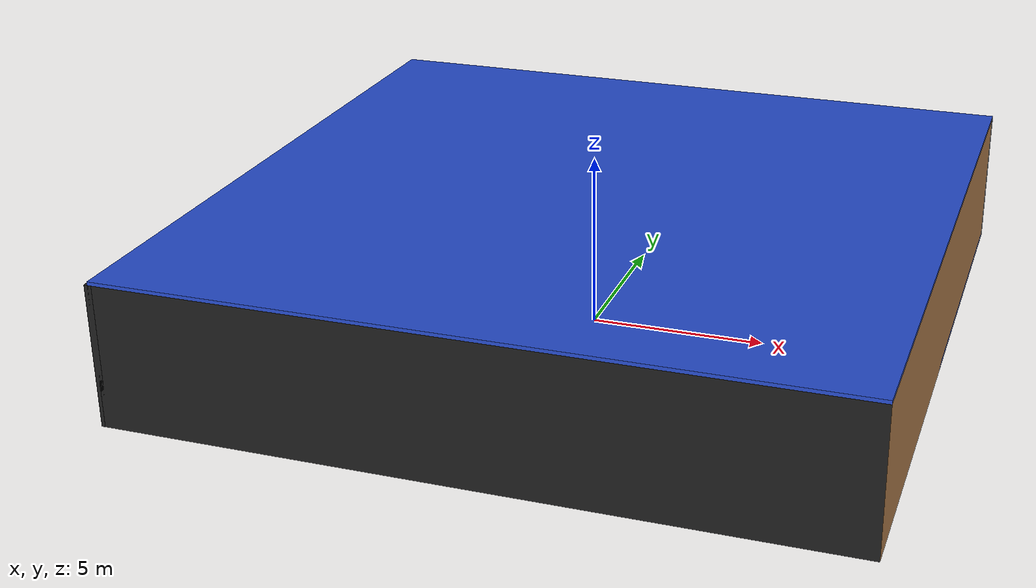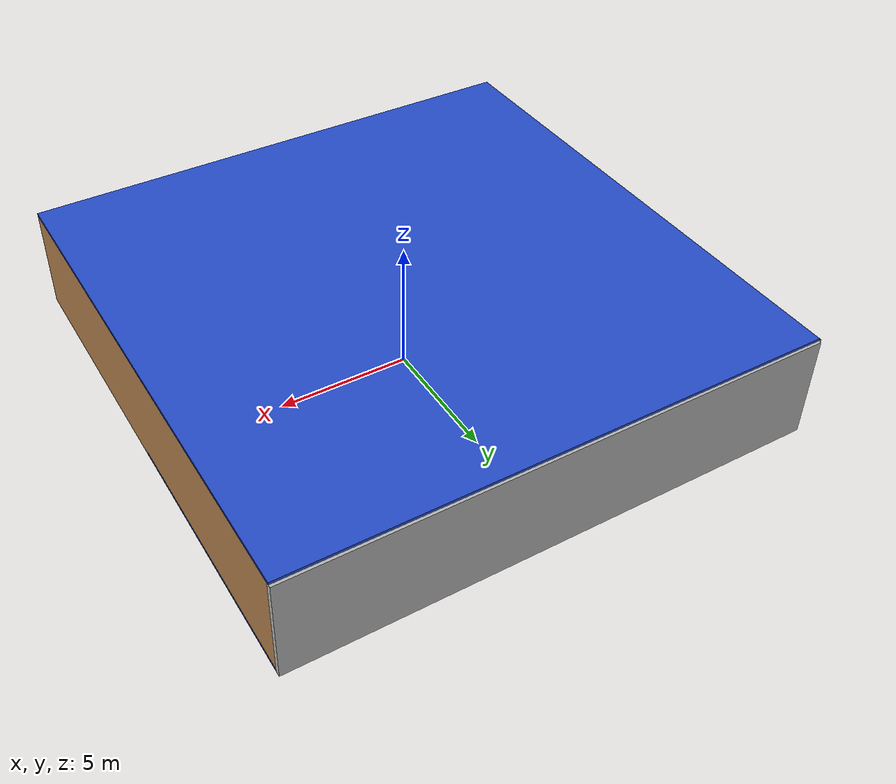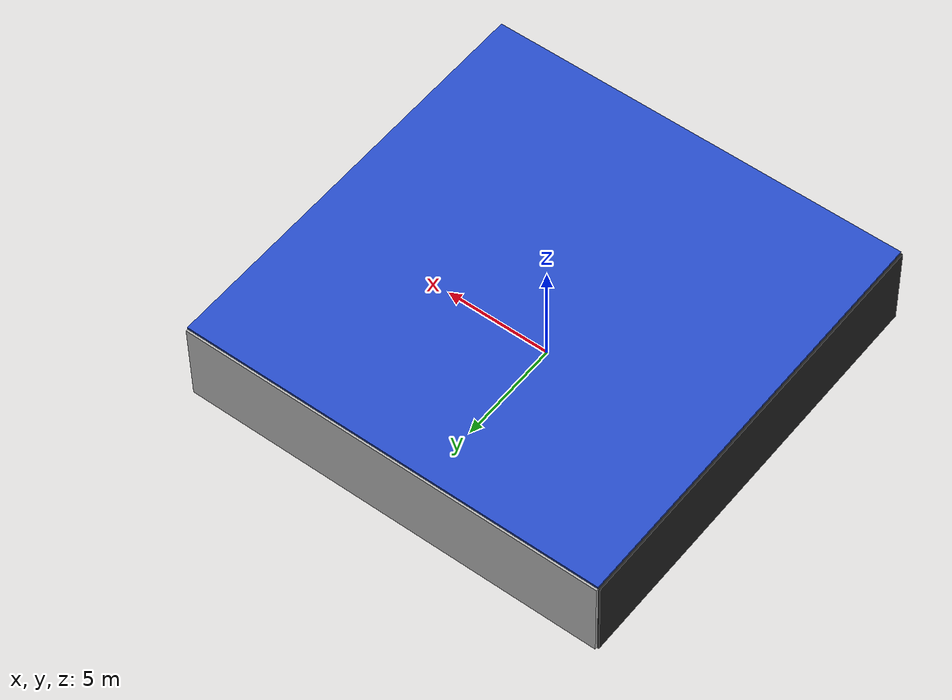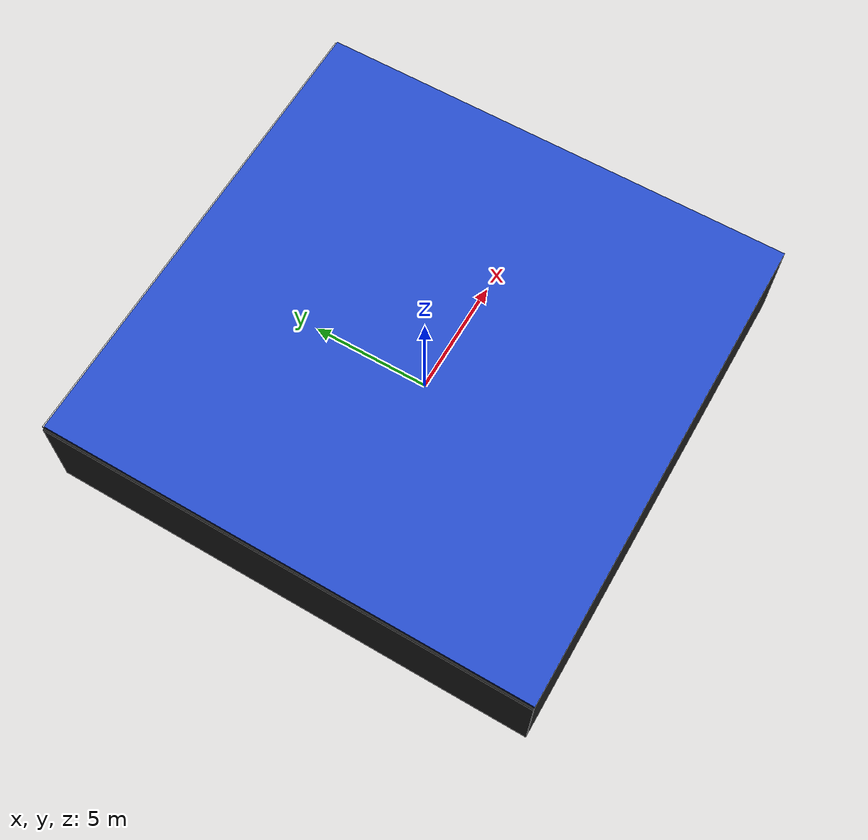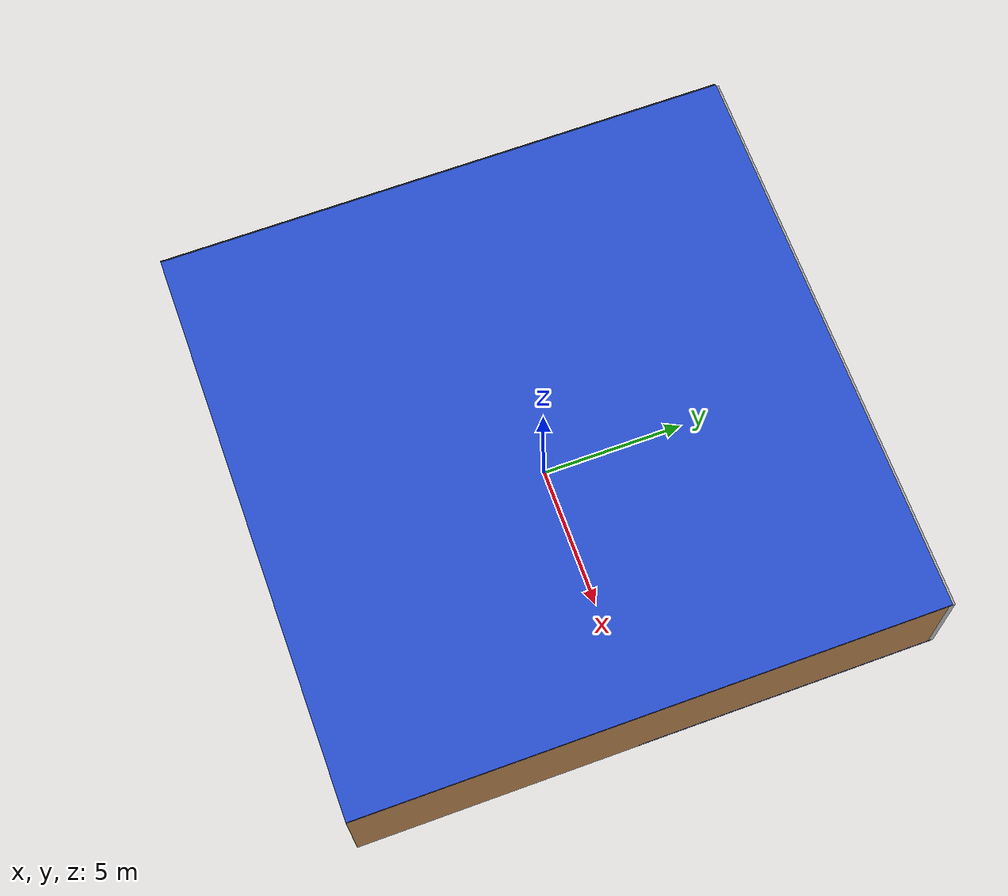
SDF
<sdf version="1.4">
 <world name="default">
  <physics type="ode">
   <max_step_size>0.001</max_step_size>
   <real_time_factor>1</real_time_factor>
   <real_time_update_rate>1000</real_time_update_rate>
   <gravity>0 0 -9.8</gravity>
  </physics>
  <scene><ambient>0.4 0.4 0.4 1</ambient><background>0.7 0.7 0.7 1</background><shadows>1</shadows></scene>
  <model name="Surrounding">
   <static>1</static>
   <link name="Ceiling">
    <collision name="Ceiling_Collision"><geometry><box><size>20 20 0.1</size></box></geometry></collision>
    <visual name="Ceiling_Visual">
     <geometry><box><size>20 20 0.1</size></box></geometry>
     <material>
      <script><uri>file://media/materials/scripts/gazebo.material</uri><name>Gazebo/BlueGlow</name></script>
     </material>
    </visual>
    <pose>0 0 4.05 0 0 0</pose>
   </link>
   <link name="Wall_South">
    <collision name="Wall_South_Collision">
     <geometry><box><size>20 0 4</size></box></geometry>
     <pose>0 0 2 0 -0 0</pose>
    </collision>
    <visual name="Wall_South_Visual">
     <pose>0 0 2 0 -0 0</pose>
     <geometry><box><size>20 0 4</size></box></geometry>
     <material>
      <script><uri>file://media/materials/scripts/gazebo.material</uri><name>Gazebo/FlatBlack</name></script>
     </material>
    </visual>
    <velocity_decay><linear>0</linear><angular>0</angular></velocity_decay>
    <pose>0 -10 0 0 -0 0</pose>
   </link>
   <link name="Wall_East">
    <collision name="Wall_21_Collision">
     <geometry><box><size>20 0 4</size></box></geometry>
     <pose>0 0 2 0 -0 0</pose>
    </collision>
    <visual name="Wall_21_Visual">
     <pose>0 0 2 0 -0 0</pose>
     <geometry><box><size>20 0 4</size></box></geometry>
     <material>
      <script><uri>file://media/materials/scripts/gazebo.material</uri><name>Gazebo/WoodPallet</name></script>
     </material>
    </visual>
    <velocity_decay><linear>0</linear><angular>0</angular></velocity_decay>
    <pose>10 0 0 0 -0 1.5708</pose>
   </link>
   <link name="Wall_North">
    <collision name="Wall_22_Collision">
     <geometry><box><size>20 0.2 4</size></box></geometry>
     <pose>0 0 2 0 -0 0</pose>
    </collision>
    <visual name="Wall_22_Visual">
     <pose>0 0 2 0 -0 0</pose>
     <geometry><box><size>20 0.2 4</size></box></geometry>
     <material>
      <script><uri>file://media/materials/scripts/gazebo.material</uri><name>Gazebo/LightOff</name></script>
     </material>
    </visual>
    <velocity_decay><linear>0</linear><angular>0</angular></velocity_decay>
    <pose>0 10 0 0 -0 0</pose>
   </link>
   <link name="Wall_West">
    <collision name="Wall_23_Collision">
     <geometry><box><size>20 0.2 4</size></box></geometry>
     <pose>0 0 2 0 -0 0</pose>
    </collision>
    <visual name="Wall_23_Visual">
     <pose>0 0 2 0 -0 0</pose>
     <geometry><box><size>20 0.2 4</size></box></geometry>
     <material>
      <script><uri>file://media/materials/scripts/gazebo.material</uri><name>Gazebo/Black</name></script>
     </material>
    </visual>
    <velocity_decay><linear>0</linear><angular>0</angular></velocity_decay>
    <pose>-10 0 0 0 0 -1.5708</pose>
   </link>
   <link name="Ground_link">
    <collision name="collision">
     <pose>0 0 .05 0 -0 0</pose>
     <geometry><box><size>20 20 0.1</size></box></geometry>
    </collision>
    <visual name="visual">
     <pose>0 0 .05 0 -0 0</pose>
     <geometry><box><size>20 20 0.1</size></box></geometry>
     <material>
      <script><uri>file://media/materials/scripts/gazebo.material</uri><name>Gazebo/BlueLaser</name></script>
     </material>
    </visual>
   </link>
   <static>1</static>
  </model>
  <spherical_coordinates>
   <surface_model>EARTH_WGS84</surface_model>
   <latitude_deg>0</latitude_deg>
   <longitude_deg>0</longitude_deg>
   <elevation>0</elevation>
   <heading_deg>0</heading_deg>
  </spherical_coordinates>
  <light name="lightball_0" type="diffuse">
   <diffuse>0.8 0.8 0.8 1</diffuse>
   <specular>0.2 0.2 0.2 1</specular>
   <attenuation>
    <range>100</range>
    <constant>0.7</constant>
    <linear>0.01</linear>
    <quadratic>0.001</quadratic>
   </attenuation>
   <direction>-0.5 0.1 -0.9</direction>
   <pose>-3.91107993085 9.07859240696 3.34807952167 0 0 0</pose>
  </light>
  <light name="lightball_1" type="diffuse">
   <diffuse>0.8 0.8 0.8 1</diffuse>
   <specular>0.2 0.2 0.2 1</specular>
   <attenuation>
    <range>100</range>
    <constant>0.7</constant>
    <linear>0.01</linear>
    <quadratic>0.001</quadratic>
   </attenuation>
   <direction>-0.5 0.1 -0.9</direction>
   <pose>-3.849443201 6.97517595522 3.29105302703 0 0 0</pose>
  </light>
  <light name="lightball_2" type="diffuse">
   <diffuse>0.8 0.8 0.8 1</diffuse>
   <specular>0.2 0.2 0.2 1</specular>
   <attenuation>
    <range>100</range>
    <constant>0.7</constant>
    <linear>0.01</linear>
    <quadratic>0.001</quadratic>
   </attenuation>
   <direction>-0.5 0.1 -0.9</direction>
   <pose>-0.0241133941305 -1.79206806703 2.44079048967 0 0 0</pose>
  </light>
  <light name="lightball_3" type="diffuse">
   <diffuse>0.8 0.8 0.8 1</diffuse>
   <specular>0.2 0.2 0.2 1</specular>
   <attenuation>
    <range>100</range>
    <constant>0.7</constant>
    <linear>0.01</linear>
    <quadratic>0.001</quadratic>
   </attenuation>
   <direction>-0.5 0.1 -0.9</direction>
   <pose>-3.52843331477 -0.170862706328 3.56261942533 0 0 0</pose>
  </light>
  <light name="lightball_4" type="diffuse">
   <diffuse>0.8 0.8 0.8 1</diffuse>
   <specular>0.2 0.2 0.2 1</specular>
   <attenuation>
    <range>100</range>
    <constant>0.7</constant>
    <linear>0.01</linear>
    <quadratic>0.001</quadratic>
   </attenuation>
   <direction>-0.5 0.1 -0.9</direction>
   <pose>2.09534313247 -2.76634793992 3.17104238345 0 0 0</pose>
  </light>
  <light name="lightball_5" type="diffuse">
   <diffuse>0.8 0.8 0.8 1</diffuse>
   <specular>0.2 0.2 0.2 1</specular>
   <attenuation>
    <range>100</range>
    <constant>0.7</constant>
    <linear>0.01</linear>
    <quadratic>0.001</quadratic>
   </attenuation>
   <direction>-0.5 0.1 -0.9</direction>
   <pose>-3.82126747898 9.01829508261 3.08392958291 0 0 0</pose>
  </light>
  <light name="lightball_6" type="diffuse">
   <diffuse>0.8 0.8 0.8 1</diffuse>
   <specular>0.2 0.2 0.2 1</specular>
   <attenuation>
    <range>100</range>
    <constant>0.7</constant>
    <linear>0.01</linear>
    <quadratic>0.001</quadratic>
   </attenuation>
   <direction>-0.5 0.1 -0.9</direction>
   <pose>-9.20895843825 8.51684580025 3.44231158023 0 0 0</pose>
  </light>
  <include><uri>model://table</uri><pose>-8.04029848431 1.45126041747 0 0 0 0.661770160195</pose></include>
  <include>
   <uri>model://textured_shapes</uri>
   <pose>-7.46219399232 5.24600889088 0 0 0 1.95878268456</pose>
  </include>
  <include><uri>model://cabinet</uri><pose>-4.05154757634 -1.51995703037 0 0 0 1.07639407425</pose></include>
  <include>
   <uri>model://textured_shapes</uri>
   <pose>-1.0982509573 7.45854229643 0 0 0 1.11343246394</pose>
  </include>
  <include><uri>model://table</uri><pose>1.07012742513 3.8705632413 0 0 0 0.0586122055311</pose></include>
  <include><uri>model://table</uri><pose>5.27072486975 -1.50179484062 0 0 0 1.46941533874</pose></include>
  <include><uri>model://table</uri><pose>7.54755285754 5.2104814094 0 0 0 3.07819129286</pose></include>
  <include>
   <uri>model://textured_shapes</uri>
   <pose>6.73320871021 7.1787233868 0 0 0 2.76138532606</pose>
  </include>
 </world>
</sdf>

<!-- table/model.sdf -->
<sdf version="1.5">
  <model name="table">
    <static>true</static>
    <link name="link">
      <collision name="surface">
        <pose>0 0 1.0 0 0 0</pose>
        <geometry>
          <box>
            <size>1.5 0.8 0.03</size>
          </box>
        </geometry>
        <surface>
          <friction>
            <ode>
              <mu>0.6</mu>
              <mu2>0.6</mu2>
            </ode>
          </friction>
        </surface>
      </collision>
      <visual name="visual1">
        <pose>0 0 1.0 0 0 0</pose>
        <geometry>
          <box>
            <size>1.5 0.8 0.03</size>
          </box>
        </geometry>
        <material>
          <script>
            <uri>model://media/materials/scripts/gazebo.material</uri>
            <name>Gazebo/Wood</name>
          </script>
        </material>
      </visual>
      <collision name="front_left_leg">
        <pose>0.68 0.38 0.5 0 0 0</pose>
        <geometry>
          <cylinder>
            <radius>0.02</radius>
            <length>1.0</length>
          </cylinder>
        </geometry>
      </collision>
      <visual name="front_left_leg">
        <pose>0.68 0.38 0.5 0 0 0</pose>
        <geometry>
          <cylinder>
            <radius>0.02</radius>
            <length>1.0</length>
          </cylinder>
        </geometry>
        <material>
          <script>
            <uri>model://media/materials/scripts/gazebo.material</uri>
            <name>Gazebo/Grey</name>
          </script>
        </material>
      </visual>
      <collision name="front_right_leg">
        <pose>0.68 -0.38 0.5 0 0 0</pose>
        <geometry>
          <cylinder>
            <radius>0.02</radius>
            <length>1.0</length>
          </cylinder>
        </geometry>
      </collision>
      <visual name="front_right_leg">
        <pose>0.68 -0.38 0.5 0 0 0</pose>
        <geometry>
          <cylinder>
            <radius>0.02</radius>
            <length>1.0</length>
          </cylinder>
        </geometry>
        <material>
          <script>
            <uri>model://media/materials/scripts/gazebo.material</uri>
            <name>Gazebo/Grey</name>
          </script>
        </material>
      </visual>
      <collision name="back_right_leg">
        <pose>-0.68 -0.38 0.5 0 0 0</pose>
        <geometry>
          <cylinder>
            <radius>0.02</radius>
            <length>1.0</length>
          </cylinder>
        </geometry>
      </collision>
      <visual name="back_right_leg">
        <pose>-0.68 -0.38 0.5 0 0 0</pose>
        <geometry>
          <cylinder>
            <radius>0.02</radius>
            <length>1.0</length>
          </cylinder>
        </geometry>
        <material>
          <script>
            <uri>model://media/materials/scripts/gazebo.material</uri>
            <name>Gazebo/Grey</name>
          </script>
        </material>
      </visual>
      <collision name="back_left_leg">
        <pose>-0.68 0.38 0.5 0 0 0</pose>
        <geometry>
          <cylinder>
            <radius>0.02</radius>
            <length>1.0</length>
          </cylinder>
        </geometry>
      </collision>
      <visual name="back_left_leg">
        <pose>-0.68 0.38 0.5 0 0 0</pose>
        <geometry>
          <cylinder>
            <radius>0.02</radius>
            <length>1.0</length>
          </cylinder>
        </geometry>
        <material>
          <script>
            <uri>model://media/materials/scripts/gazebo.material</uri>
            <name>Gazebo/Grey</name>
          </script>
        </material>
      </visual>
    </link>
  </model>
</sdf>

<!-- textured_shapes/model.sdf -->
<sdf version="1.6">
  <model name="textured_shapes">
    <pose>0 0 0.5 0 0 0</pose>
    <link name="box">
      <pose>0 -1.5 0 0 0 0</pose>
      <collision name="collision">
        <geometry>
          <box>
            <size>1 1 1</size>
          </box>
        </geometry>
      </collision>
      <visual name="visual">
        <geometry>
          <box>
            <size>1 1 1</size>
          </box>
        </geometry>
        <material>
          <script>
            <uri>model://../model_source/models/textured_shapes/materials/scripts</uri>
            <uri>model://../model_source/models/textured_shapes/materials/textures</uri>
            <name>TexturedShape/Squares</name>
          </script>
        </material>
      </visual>
    </link>
    <link name="sphere">
      <collision name="collision">
        <geometry>
          <sphere>
            <radius>0.5</radius>
          </sphere>
        </geometry>
      </collision>
      <visual name="visual">
        <geometry>
          <sphere>
            <radius>0.5</radius>
          </sphere>
        </geometry>
        <material>
          <script>
            <uri>model://../model_source/models/textured_shapes/materials/scripts</uri>
            <uri>model://../model_source/models/textured_shapes/materials/textures</uri>
            <name>TexturedShape/Squares</name>
          </script>
        </material>
      </visual>
    </link>
    <link name="cylinder">
      <pose>0 1.5 0 0 0 0</pose>
      <collision name="collision">
        <geometry>
          <cylinder>
            <radius>0.5</radius>
            <length>1</length>
          </cylinder>
        </geometry>
      </collision>
      <visual name="visual">
        <geometry>
          <cylinder>
            <radius>0.5</radius>
            <length>1</length>
          </cylinder>
        </geometry>
        <material>
          <script>
            <uri>model://../model_source/models/textured_shapes/materials/scripts</uri>
            <uri>model://../model_source/models/textured_shapes/materials/textures</uri>
            <name>TexturedShape/Squares</name>
          </script>
        </material>
      </visual>
    </link>
  </model>
</sdf>

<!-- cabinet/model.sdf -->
<sdf version="1.5">
  <model name="cabinet">
    <static>true</static>
    <link name="cabinet_bottom_plate">
      <inertial>
        <pose>0 0 -1 0 0 0</pose>
        <inertia>
          <ixx>2.050000</ixx>
          <ixy>0</ixy>
          <ixz>0</ixz>
          <iyy>2.050000</iyy>
          <iyz>0</iyz>
          <izz>2.050000</izz>
        </inertia>
        <mass>25.000000</mass>
      </inertial>
      <collision name="cabinet_bottom_plate_geom">
        <pose>0 0 0.010000 0 0 0</pose>
        <geometry>
          <box>
            <size>0.450000 0.450000 0.020000</size>
          </box>
        </geometry>
      </collision>
      <visual name="cabinet_bottom_plate_geom_visual">
        <pose>0 0 0.010000 0 0 0</pose>
        <geometry>
          <box>
            <size>0.450000 0.450000 0.020000</size>
          </box>
        </geometry>
        <material>
          <script>
            <uri>model://media/materials/scripts/gazebo.material</uri>
            <name>Gazebo/Wood</name>
          </script>
        </material>
      </visual>
      <collision name="cabinet_bottom_plate_geom_cabinet_back_plate">
        <pose>0.235000 0 0.510000 0 0 0</pose>
        <geometry>
          <box>
            <size>0.020000 0.450000 1.020000</size>
          </box>
        </geometry>
      </collision>
      <visual name="cabinet_bottom_plate_geom_cabinet_back_plate_visual">
        <pose>0.235000 0 0.510000 0 0 0</pose>
        <geometry>
          <box>
            <size>0.020000 0.450000 1.020000</size>
          </box>
        </geometry>
        <material>
          <script>
            <uri>model://media/materials/scripts/gazebo.material</uri>
            <name>Gazebo/Wood</name>
          </script>
        </material>
      </visual>
      <collision name="cabinet_bottom_plate_geom_cabinet_left_plate">
        <pose>0 0.235000 0.510000 0 0 0</pose>
        <geometry>
          <box>
            <size>0.450000 0.020000 1.020000</size>
          </box>
        </geometry>
      </collision>
      <visual name="cabinet_bottom_plate_geom_cabinet_left_plate_visual">
        <pose>0 0.235000 0.510000 0 0 0</pose>
        <geometry>
          <box>
            <size>0.450000 0.020000 1.020000</size>
          </box>
        </geometry>
        <material>
          <script>
            <uri>model://media/materials/scripts/gazebo.material</uri>
            <name>Gazebo/Wood</name>
          </script>
        </material>
      </visual>
      <collision name="cabinet_bottom_plate_geom_cabinet_middle_plate">
        <pose>0 0 0.510000 0 0 0</pose>
        <geometry>
          <box>
            <size>0.450000 0.450000 0.020000</size>
          </box>
        </geometry>
      </collision>
      <visual name="cabinet_bottom_plate_geom_cabinet_middle_plate_visual">
        <pose>0 0 0.510000 0 0 0</pose>
        <geometry>
          <box>
            <size>0.450000 0.450000 0.020000</size>
          </box>
        </geometry>
        <material>
          <script>
            <uri>model://media/materials/scripts/gazebo.material</uri>
            <name>Gazebo/Wood</name>
          </script>
        </material>
      </visual>
      <collision name="cabinet_bottom_plate_geom_cabinet_right_plate">
        <pose>0 -0.235000 0.510000 0 0 0</pose>
        <geometry>
          <box>
            <size>0.450000 0.020000 1.020000</size>
          </box>
        </geometry>
      </collision>
      <visual name="cabinet_bottom_plate_geom_cabinet_right_plate_visual">
        <pose>0 -0.235000 0.510000 0 0 0</pose>
        <geometry>
          <box>
            <size>0.450000 0.020000 1.020000</size>
          </box>
        </geometry>
        <material>
          <script>
            <uri>model://media/materials/scripts/gazebo.material</uri>
            <name>Gazebo/Wood</name>
          </script>
        </material>
      </visual>
      <collision name="cabinet_bottom_plate_geom_cabinet_top_plate">
        <pose>0 0 1.010000 0 0 0</pose>
        <geometry>
          <box>
            <size>0.450000 0.450000 0.020000</size>
          </box>
        </geometry>
      </collision>
      <visual name="cabinet_bottom_plate_geom_cabinet_top_plate_visual">
        <pose>0 0 1.010000 0 0 0</pose>
        <geometry>
          <box>
            <size>0.450000 0.450000 0.020000</size>
          </box>
        </geometry>
        <material>
          <script>
            <uri>model://media/materials/scripts/gazebo.material</uri>
            <name>Gazebo/Wood</name>
          </script>
        </material>
      </visual>
    </link>
  </model>
</sdf>
